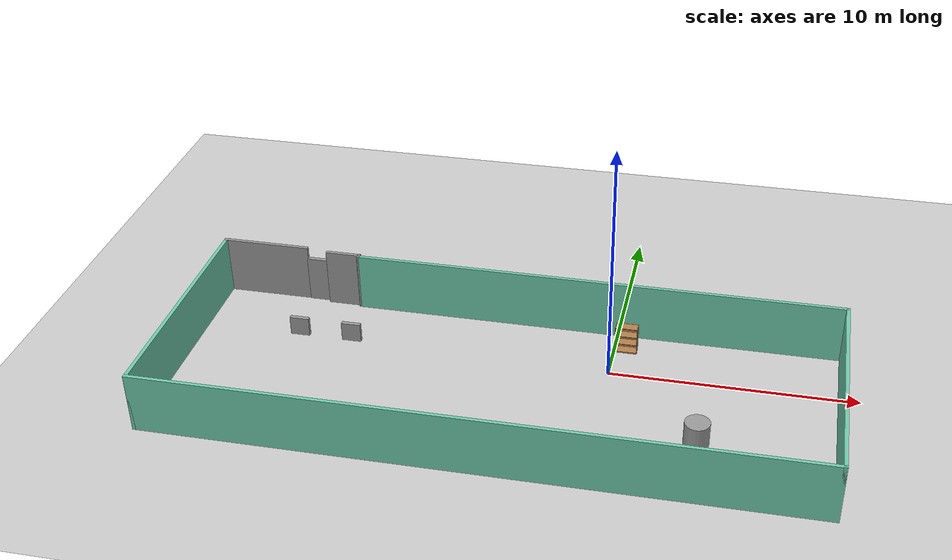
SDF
<sdf version="1.7">
 <world name="default">
  <model name="ground_plane">
   <static>1</static>
   <link name="link">
    <collision name="collision">
     <geometry><plane><normal>0 0 1</normal><size>100 100</size></plane></geometry>
     <surface>
      <contact><collide_bitmask>65535</collide_bitmask></contact>
      <friction><ode><mu>100</mu><mu2>50</mu2></ode></friction>
     </surface>
    </collision>
    <visual name="visual">
     <cast_shadows>0</cast_shadows>
     <geometry><plane><normal>0 0 1</normal><size>100 100</size></plane></geometry>
     <material>
      <script><uri>file://media/materials/scripts/gazebo.material</uri><name>Gazebo/Grey</name></script>
     </material>
    </visual>
   </link>
  </model>
  <model name="bookshelf">
   <static>1</static>
   <link name="link">
    <inertial><mass>1</mass></inertial>
    <collision name="back">
     <pose>0 0.005 0.6 0 -0 0</pose>
     <geometry><box><size>0.9 0.01 1.2</size></box></geometry>
    </collision>
    <visual name="visual1">
     <pose>0 0.005 0.6 0 -0 0</pose>
     <geometry><box><size>0.9 0.01 1.2</size></box></geometry>
     <material>
      <script><uri>file://media/materials/scripts/gazebo.material</uri><name>Gazebo/Wood</name></script>
     </material>
    </visual>
    <collision name="left_side">
     <pose>0.45 -0.195 0.6 0 -0 0</pose>
     <geometry><box><size>0.02 0.4 1.2</size></box></geometry>
    </collision>
    <visual name="visual2">
     <pose>0.45 -0.195 0.6 0 -0 0</pose>
     <geometry><box><size>0.02 0.4 1.2</size></box></geometry>
     <material>
      <script><uri>file://media/materials/scripts/gazebo.material</uri><name>Gazebo/Wood</name></script>
     </material>
    </visual>
    <collision name="right_side">
     <pose>-0.45 -0.195 0.6 0 -0 0</pose>
     <geometry><box><size>0.02 0.4 1.2</size></box></geometry>
    </collision>
    <visual name="visual3">
     <pose>-0.45 -0.195 0.6 0 -0 0</pose>
     <geometry><box><size>0.02 0.4 1.2</size></box></geometry>
     <material>
      <script><uri>file://media/materials/scripts/gazebo.material</uri><name>Gazebo/Wood</name></script>
     </material>
    </visual>
    <collision name="bottom">
     <pose>0 -0.195 0.03 0 -0 0</pose>
     <geometry><box><size>0.88 0.4 0.06</size></box></geometry>
    </collision>
    <visual name="visual4">
     <pose>0 -0.195 0.03 0 -0 0</pose>
     <geometry><box><size>0.88 0.4 0.06</size></box></geometry>
     <material>
      <script><uri>file://media/materials/scripts/gazebo.material</uri><name>Gazebo/Wood</name></script>
     </material>
    </visual>
    <collision name="top">
     <pose>0 -0.195 1.19 0 -0 0</pose>
     <geometry><box><size>0.88 0.4 0.02</size></box></geometry>
    </collision>
    <visual name="visual5">
     <pose>0 -0.195 1.19 0 -0 0</pose>
     <geometry><box><size>0.88 0.4 0.02</size></box></geometry>
     <material>
      <script><uri>file://media/materials/scripts/gazebo.material</uri><name>Gazebo/Wood</name></script>
     </material>
    </visual>
    <collision name="low_shelf">
     <pose>0 -0.195 0.43 0 -0 0</pose>
     <geometry><box><size>0.88 0.4 0.02</size></box></geometry>
    </collision>
    <visual name="visual6">
     <pose>0 -0.195 0.43 0 -0 0</pose>
     <geometry><box><size>0.88 0.4 0.02</size></box></geometry>
     <material>
      <script><uri>file://media/materials/scripts/gazebo.material</uri><name>Gazebo/Wood</name></script>
     </material>
    </visual>
    <collision name="high_shelf">
     <pose>0 -0.195 0.8 0 -0 0</pose>
     <geometry><box><size>0.88 0.4 0.02</size></box></geometry>
    </collision>
    <visual name="visual7">
     <pose>0 -0.195 0.8 0 -0 0</pose>
     <geometry><box><size>0.88 0.4 0.02</size></box></geometry>
     <material>
      <script><uri>file://media/materials/scripts/gazebo.material</uri><name>Gazebo/Wood</name></script>
     </material>
    </visual>
   </link>
   <pose>0.47905 1.92776 0 0 -0 0</pose>
  </model>
  <model name="unit_cylinder">
   <pose>3.89319 -3.73241 0.499991 0 -0 4.1e-05</pose>
   <link name="link">
    <inertial>
     <mass>1</mass>
     <inertia><ixx>0.145833</ixx><ixy>0</ixy><ixz>0</ixz><iyy>0.145833</iyy><iyz>0</iyz><izz>0.125</izz></inertia>
    </inertial>
    <collision name="collision">
     <geometry><cylinder><radius>0.5</radius><length>1</length></cylinder></geometry>
    </collision>
    <visual name="visual">
     <geometry><cylinder><radius>0.5</radius><length>1</length></cylinder></geometry>
     <material>
      <script><name>Gazebo/Grey</name><uri>file://media/materials/scripts/gazebo.material</uri></script>
     </material>
    </visual>
   </link>
  </model>
  <model name="Building">
   <pose>-4.00002 -2 0 0 -0 0</pose>
   <link name="Door_0">
    <collision name="Door_0_Collision">
     <geometry><box><size>0.9 0.17 2</size></box></geometry>
     <pose>0 0 1 0 -0 0</pose>
    </collision>
    <visual name="Door_0_Visual">
     <pose>0 0 1 0 -0 0</pose>
     <geometry><box><size>0.9 0.17 2</size></box></geometry>
     <material>
      <script><uri>file://media/materials/scripts/gazebo.material</uri><name>Gazebo/Grey</name></script>
     </material>
    </visual>
    <pose>-9.08568 5.03677 0 0 -0 0</pose>
   </link>
   <link name="Wall_0">
    <collision name="Wall_0_Collision">
     <geometry><box><size>3.75 0.15 2.5</size></box></geometry>
     <pose>0 0 1.25 0 -0 0</pose>
    </collision>
    <visual name="Wall_0_Visual">
     <pose>0 0 1.25 0 -0 0</pose>
     <geometry><box><size>3.75 0.15 2.5</size></box></geometry>
     <material>
      <script><uri>file://media/materials/scripts/gazebo.material</uri><name>Gazebo/Grey</name></script>
      <ambient>1 1 1 1</ambient>
     </material>
     <meta><layer>0</layer></meta>
    </visual>
    <pose>-11.375 5.05 0 0 -0 3.14159</pose>
   </link>
   <link name="Wall_2">
    <collision name="Wall_2_Collision">
     <geometry><box><size>10.25 0.15 2.5</size></box></geometry>
     <pose>0 0 1.25 0 -0 0</pose>
    </collision>
    <visual name="Wall_2_Visual">
     <pose>0 0 1.25 0 -0 0</pose>
     <geometry><box><size>10.25 0.15 2.5</size></box></geometry>
     <material>
      <script><uri>file://media/materials/scripts/gazebo.material</uri><name>Gazebo/Grey</name></script>
      <ambient>0.435294 0.796078 0.67451 1</ambient>
     </material>
     <meta><layer>0</layer></meta>
    </visual>
    <pose>-13.175 0 0 0 -0 -1.5708</pose>
   </link>
   <link name="Wall_3">
    <collision name="Wall_3_Collision">
     <geometry><box><size>26.5 0.15 2.5</size></box></geometry>
     <pose>0 0 1.25 0 -0 0</pose>
    </collision>
    <visual name="Wall_3_Visual">
     <pose>0 0 1.25 0 -0 0</pose>
     <geometry><box><size>26.5 0.15 2.5</size></box></geometry>
     <material>
      <script><uri>file://media/materials/scripts/gazebo.material</uri><name>Gazebo/Grey</name></script>
      <ambient>0.435294 0.796078 0.67451 1</ambient>
     </material>
     <meta><layer>0</layer></meta>
    </visual>
    <pose>0 -5.05 0 0 -0 0</pose>
   </link>
   <link name="Wall_4">
    <collision name="Wall_4_Collision">
     <geometry><box><size>10 0.15 2.5</size></box></geometry>
     <pose>0 0 1.25 0 -0 0</pose>
    </collision>
    <visual name="Wall_4_Visual">
     <pose>0 0 1.25 0 -0 0</pose>
     <geometry><box><size>10 0.15 2.5</size></box></geometry>
     <material>
      <script><uri>file://media/materials/scripts/gazebo.material</uri><name>Gazebo/Grey</name></script>
      <ambient>0.435294 0.796078 0.67451 1</ambient>
     </material>
     <meta><layer>0</layer></meta>
    </visual>
    <pose>13.175 -0.125 0 0 -0 1.5708</pose>
   </link>
   <link name="Wall_5">
    <collision name="Wall_5_Collision">
     <geometry><box><size>20.5 0.15 2.5</size></box></geometry>
     <pose>0 0 1.25 0 -0 0</pose>
    </collision>
    <visual name="Wall_5_Visual">
     <pose>0 0 1.25 0 -0 0</pose>
     <geometry><box><size>20.5 0.15 2.5</size></box></geometry>
     <material>
      <script><uri>file://media/materials/scripts/gazebo.material</uri><name>Gazebo/Grey</name></script>
      <ambient>0.435294 0.796078 0.67451 1</ambient>
     </material>
     <meta><layer>0</layer></meta>
    </visual>
    <pose>3 4.8 0 0 -0 3.14159</pose>
   </link>
   <link name="Wall_6">
    <collision name="Wall_6_Collision">
     <geometry><box><size>0.25 0.15 2.5</size></box></geometry>
     <pose>0 0 1.25 0 -0 0</pose>
    </collision>
    <visual name="Wall_6_Visual">
     <pose>0 0 1.25 0 -0 0</pose>
     <geometry><box><size>0.25 0.15 2.5</size></box></geometry>
     <material>
      <script><uri>file://media/materials/scripts/gazebo.material</uri><name>Gazebo/Grey</name></script>
      <ambient>1 1 1 1</ambient>
     </material>
     <meta><layer>0</layer></meta>
    </visual>
    <pose>-7.18794 4.8483 0 0 -0 1.8326</pose>
   </link>
   <link name="Wall_7">
    <collision name="Wall_7_Collision">
     <geometry><box><size>0.16 0.15 2.5</size></box></geometry>
     <pose>0 0 1.25 0 -0 0</pose>
    </collision>
    <visual name="Wall_7_Visual">
     <pose>0 0 1.25 0 -0 0</pose>
     <geometry><box><size>0.16 0.15 2.5</size></box></geometry>
     <material>
      <script><uri>file://media/materials/scripts/gazebo.material</uri><name>Gazebo/Grey</name></script>
      <ambient>1 1 1 1</ambient>
     </material>
     <meta><layer>0</layer></meta>
    </visual>
    <pose>-7.19588 4.89659 0 0 -0 0</pose>
   </link>
   <link name="Wall_8">
    <collision name="Wall_8_Collision">
     <geometry><box><size>0.16 0.15 2.5</size></box></geometry>
     <pose>0 0 1.25 0 -0 0</pose>
    </collision>
    <visual name="Wall_8_Visual">
     <pose>0 0 1.25 0 -0 0</pose>
     <geometry><box><size>0.16 0.15 2.5</size></box></geometry>
     <material>
      <script><uri>file://media/materials/scripts/gazebo.material</uri><name>Gazebo/Grey</name></script>
      <ambient>1 1 1 1</ambient>
     </material>
     <meta><layer>0</layer></meta>
    </visual>
    <pose>-7.19588 4.89659 0 0 -0 3.14159</pose>
   </link>
   <link name="Wall_9">
    <collision name="Wall_9_Collision">
     <geometry><box><size>1.5 0.15 2.5</size></box></geometry>
     <pose>0 0 1.25 0 -0 0</pose>
    </collision>
    <visual name="Wall_9_Visual">
     <pose>0 0 1.25 0 -0 0</pose>
     <geometry><box><size>1.5 0.15 2.5</size></box></geometry>
     <material>
      <script><uri>file://media/materials/scripts/gazebo.material</uri><name>Gazebo/Grey</name></script>
      <ambient>1 1 1 1</ambient>
     </material>
     <meta><layer>0</layer></meta>
    </visual>
    <pose>-7.87588 4.89659 0 0 -0 3.14159</pose>
   </link>
   <link name="Window_0">
    <collision name="Window_0_Collision">
     <geometry><box><size>0.8 0.17 0.8</size></box></geometry>
     <pose>0 0 0.4 0 -0 0</pose>
    </collision>
    <visual name="Window_0_Visual">
     <pose>0 0 0.4 0 -0 0</pose>
     <geometry><box><size>0.8 0.17 0.8</size></box></geometry>
     <material>
      <script><uri>file://media/materials/scripts/gazebo.material</uri><name>Gazebo/Grey</name></script>
     </material>
    </visual>
    <pose>-8.78128 1.59775 0.5 0 -0 0</pose>
   </link>
   <link name="Window_1">
    <collision name="Window_1_Collision">
     <geometry><box><size>0.8 0.17 0.8</size></box></geometry>
     <pose>0 0 0.4 0 -0 0</pose>
    </collision>
    <visual name="Window_1_Visual">
     <pose>0 0 0.4 0 -0 0</pose>
     <geometry><box><size>0.8 0.17 0.8</size></box></geometry>
     <material>
      <script><uri>file://media/materials/scripts/gazebo.material</uri><name>Gazebo/Grey</name></script>
     </material>
    </visual>
    <pose>-6.58128 1.58905 0.5 0 -0 0</pose>
   </link>
   <static>1</static>
  </model>
 </world>
</sdf>
